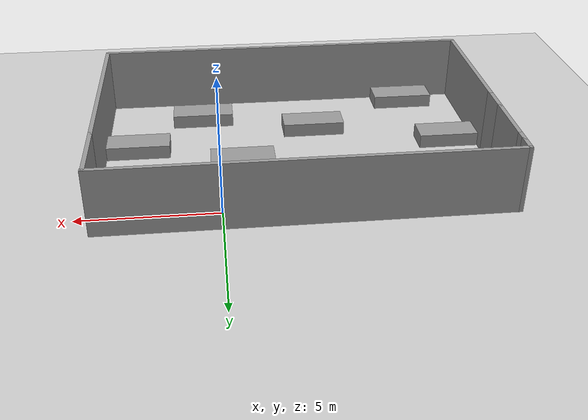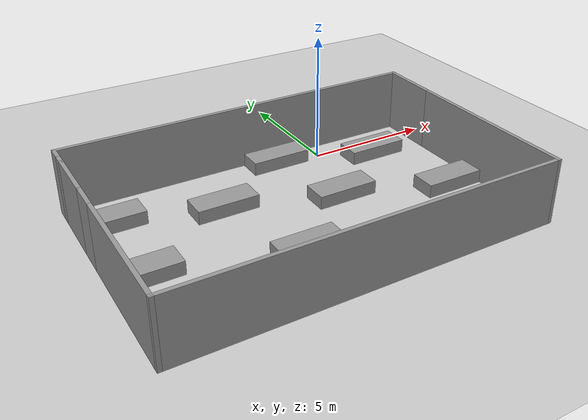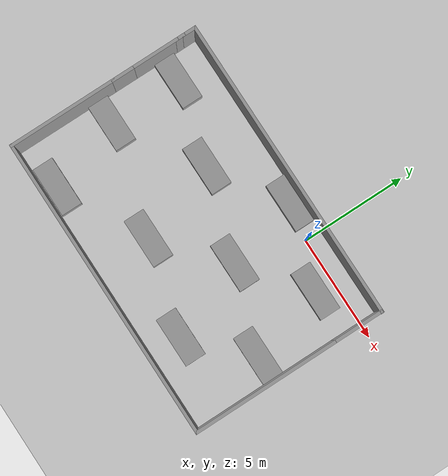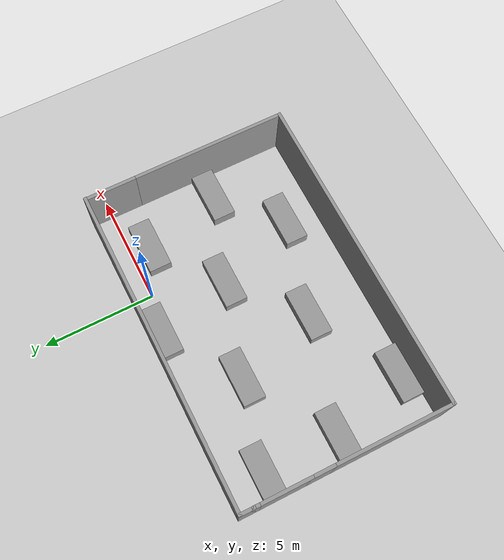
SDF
<sdf version="1.7">
 <world name="default">
  <model name="ground_plane">
   <static>1</static>
   <link name="link">
    <collision name="collision">
     <geometry><plane><normal>0 0 1</normal><size>100 100</size></plane></geometry>
     <surface><friction><ode><mu>100</mu><mu2>50</mu2></ode></friction></surface>
    </collision>
    <visual name="visual">
     <cast_shadows>0</cast_shadows>
     <geometry><plane><normal>0 0 1</normal><size>100 100</size></plane></geometry>
     <material>
      <script><uri>file://media/materials/scripts/gazebo.material</uri><name>Gazebo/Grey</name></script>
     </material>
    </visual>
   </link>
  </model>
  <model name="half_square">
   <pose>-2.87363 -3.76482 0 0 -0 0</pose>
   <link name="Wall_0">
    <collision name="Wall_0_Collision">
     <geometry><box><size>14.5 0.15 2.5</size></box></geometry>
     <pose>0 0 1.25 0 -0 0</pose>
    </collision>
    <visual name="Wall_0_Visual">
     <pose>0 0 1.25 0 -0 0</pose>
     <geometry><box><size>14.5 0.15 2.5</size></box></geometry>
     <material>
      <script><uri>file://media/materials/scripts/gazebo.material</uri><name>Gazebo/Grey</name></script>
      <ambient>1 1 1 1</ambient>
     </material>
     <meta><layer>0</layer></meta>
    </visual>
    <pose>-0.010056 -4.61503 0 0 -0 0</pose>
   </link>
   <link name="Wall_11">
    <collision name="Wall_11_Collision">
     <geometry><box><size>2.5 0.15 2.5</size></box></geometry>
     <pose>0 0 1.25 0 -0 0</pose>
    </collision>
    <visual name="Wall_11_Visual">
     <pose>0 0 1.25 0 -0 0</pose>
     <geometry><box><size>2.5 0.15 2.5</size></box></geometry>
     <material>
      <script><uri>file://media/materials/scripts/gazebo.material</uri><name>Gazebo/Grey</name></script>
      <ambient>1 1 1 1</ambient>
     </material>
     <meta><layer>0</layer></meta>
    </visual>
    <pose>7.16494 3.40997 0 0 -0 1.5708</pose>
   </link>
   <link name="Wall_13">
    <collision name="Wall_13_Collision">
     <geometry><box><size>0.730235 0.15 2.5</size></box></geometry>
     <pose>0 0 1.25 0 -0 0</pose>
    </collision>
    <visual name="Wall_13_Visual">
     <pose>0 0 1.25 0 -0 0</pose>
     <geometry><box><size>0.730235 0.15 2.5</size></box></geometry>
     <material>
      <script><uri>file://media/materials/scripts/gazebo.material</uri><name>Gazebo/Grey</name></script>
      <ambient>1 1 1 1</ambient>
     </material>
     <meta><layer>0</layer></meta>
    </visual>
    <pose>-7.18506 4.32491 0 0 -0 1.5708</pose>
   </link>
   <link name="Wall_14">
    <collision name="Wall_14_Collision">
     <geometry><box><size>14.5 0.15 2.5</size></box></geometry>
     <pose>0 0 1.25 0 -0 0</pose>
    </collision>
    <visual name="Wall_14_Visual">
     <pose>0 0 1.25 0 -0 0</pose>
     <geometry><box><size>14.5 0.15 2.5</size></box></geometry>
     <material>
      <script><uri>file://media/materials/scripts/gazebo.material</uri><name>Gazebo/Grey</name></script>
      <ambient>1 1 1 1</ambient>
     </material>
     <meta><layer>0</layer></meta>
    </visual>
    <pose>0.010057 4.61486 0 0 -0 0</pose>
   </link>
   <link name="Wall_2">
    <collision name="Wall_2_Collision">
     <geometry><box><size>5.25 0.15 2.5</size></box></geometry>
     <pose>0 0 1.25 0 -0 0</pose>
    </collision>
    <visual name="Wall_2_Visual">
     <pose>0 0 1.25 0 -0 0</pose>
     <geometry><box><size>5.25 0.15 2.5</size></box></geometry>
     <material>
      <script><uri>file://media/materials/scripts/gazebo.material</uri><name>Gazebo/Grey</name></script>
      <ambient>1 1 1 1</ambient>
     </material>
     <meta><layer>0</layer></meta>
    </visual>
    <pose>-7.18506 -2.06503 0 0 -0 1.5708</pose>
   </link>
   <link name="Wall_4">
    <collision name="Wall_4_Collision">
     <geometry><box><size>7 0.15 2.5</size></box></geometry>
     <pose>0 0 1.25 0 -0 0</pose>
    </collision>
    <visual name="Wall_4_Visual">
     <pose>0 0 1.25 0 -0 0</pose>
     <geometry><box><size>7 0.15 2.5</size></box></geometry>
     <material>
      <script><uri>file://media/materials/scripts/gazebo.material</uri><name>Gazebo/Grey</name></script>
      <ambient>1 1 1 1</ambient>
     </material>
     <meta><layer>0</layer></meta>
    </visual>
    <pose>7.16494 -1.19003 0 0 -0 1.5708</pose>
   </link>
   <link name="Wall_6">
    <collision name="Wall_6_Collision">
     <geometry><box><size>1.25 0.15 2.5</size></box></geometry>
     <pose>0 0 1.25 0 -0 0</pose>
    </collision>
    <visual name="Wall_6_Visual">
     <pose>0 0 1.25 0 -0 0</pose>
     <geometry><box><size>1.25 0.15 2.5</size></box></geometry>
     <material>
      <script><uri>file://media/materials/scripts/gazebo.material</uri><name>Gazebo/Grey</name></script>
      <ambient>1 1 1 1</ambient>
     </material>
     <meta><layer>0</layer></meta>
    </visual>
    <pose>-7.18506 1.03497 0 0 -0 1.5708</pose>
   </link>
   <link name="Wall_8">
    <collision name="Wall_8_Collision">
     <geometry><box><size>2.25 0.15 2.5</size></box></geometry>
     <pose>0 0 1.25 0 -0 0</pose>
    </collision>
    <visual name="Wall_8_Visual">
     <pose>0 0 1.25 0 -0 0</pose>
     <geometry><box><size>2.25 0.15 2.5</size></box></geometry>
     <material>
      <script><uri>file://media/materials/scripts/gazebo.material</uri><name>Gazebo/Grey</name></script>
      <ambient>1 1 1 1</ambient>
     </material>
     <meta><layer>0</layer></meta>
    </visual>
    <pose>-7.18506 2.63497 0 0 -0 1.5708</pose>
   </link>
   <link name="Wall_9">
    <collision name="Wall_9_Collision">
     <geometry><box><size>0.5 0.15 2.5</size></box></geometry>
     <pose>0 0 1.25 0 -0 0</pose>
    </collision>
    <visual name="Wall_9_Visual">
     <pose>0 0 1.25 0 -0 0</pose>
     <geometry><box><size>0.5 0.15 2.5</size></box></geometry>
     <material>
      <script><uri>file://media/materials/scripts/gazebo.material</uri><name>Gazebo/Grey</name></script>
      <ambient>1 1 1 1</ambient>
     </material>
     <meta><layer>0</layer></meta>
    </visual>
    <pose>-7.18506 3.85997 0 0 -0 1.5708</pose>
   </link>
   <static>1</static>
  </model>
  <model name="blocks">
   <link name="link_0">
    <inertial>
     <mass>2.36943</mass>
     <inertia><ixx>0.394906</ixx><ixy>0</ixy><ixz>0</ixz><iyy>1.30599</iyy><iyz>0</iyz><izz>1.30599</izz></inertia>
    </inertial>
    <pose>-5.75384 2.69431 0.000962 0 -0 0</pose>
    <visual name="visual">
     <geometry><box><size>2.36943 1 1</size></box></geometry>
     <material>
      <lighting>1</lighting>
      <script><uri>file://media/materials/scripts/gazebo.material</uri><name>Gazebo/Grey</name></script>
      <shader type="pixel"/>
     </material>
    </visual>
    <collision name="collision">
     <geometry><box><size>2.36943 1 1</size></box></geometry>
     <surface>
      <friction>
       <ode><mu>1</mu><mu2>1</mu2><fdir1>0 0 0</fdir1><slip1>0</slip1><slip2>0</slip2></ode>
       <torsional>
        <coefficient>1</coefficient>
        <patch_radius>0</patch_radius>
        <surface_radius>0</surface_radius>
        <use_patch_radius>1</use_patch_radius>
        <ode><slip>0</slip></ode>
       </torsional>
      </friction>
      <bounce><restitution_coefficient>0</restitution_coefficient><threshold>1e+06</threshold></bounce>
      <contact>
       <collide_without_contact>0</collide_without_contact>
       <collide_without_contact_bitmask>1</collide_without_contact_bitmask>
       <collide_bitmask>1</collide_bitmask>
       <ode>
        <soft_cfm>0</soft_cfm>
        <soft_erp>0.2</soft_erp>
        <kp>1e+13</kp>
        <kd>1</kd>
        <max_vel>0.01</max_vel>
        <min_depth>0</min_depth>
       </ode>
       <bullet>
        <split_impulse>1</split_impulse>
        <split_impulse_penetration_threshold>-0.01</split_impulse_penetration_threshold>
        <soft_cfm>0</soft_cfm>
        <soft_erp>0.2</soft_erp>
        <kp>1e+13</kp>
        <kd>1</kd>
       </bullet>
      </contact>
     </surface>
    </collision>
   </link>
   <link name="link_0_clone">
    <inertial>
     <mass>2.36943</mass>
     <inertia><ixx>0.394906</ixx><ixy>0</ixy><ixz>0</ixz><iyy>1.30599</iyy><iyz>0</iyz><izz>1.30599</izz></inertia>
    </inertial>
    <pose>-5.77767 -0.741476 0.000962 0 -0 0</pose>
    <visual name="visual">
     <geometry><box><size>2.36943 1 1</size></box></geometry>
     <material>
      <lighting>1</lighting>
      <script><uri>file://media/materials/scripts/gazebo.material</uri><name>Gazebo/Grey</name></script>
      <shader type="pixel"/>
     </material>
    </visual>
    <collision name="collision">
     <geometry><box><size>2.36943 1 1</size></box></geometry>
     <surface>
      <friction>
       <ode><mu>1</mu><mu2>1</mu2><fdir1>0 0 0</fdir1><slip1>0</slip1><slip2>0</slip2></ode>
       <torsional>
        <coefficient>1</coefficient>
        <patch_radius>0</patch_radius>
        <surface_radius>0</surface_radius>
        <use_patch_radius>1</use_patch_radius>
        <ode><slip>0</slip></ode>
       </torsional>
      </friction>
      <bounce><restitution_coefficient>0</restitution_coefficient><threshold>1e+06</threshold></bounce>
      <contact>
       <collide_without_contact>0</collide_without_contact>
       <collide_without_contact_bitmask>1</collide_without_contact_bitmask>
       <collide_bitmask>1</collide_bitmask>
       <ode>
        <soft_cfm>0</soft_cfm>
        <soft_erp>0.2</soft_erp>
        <kp>1e+13</kp>
        <kd>1</kd>
        <max_vel>0.01</max_vel>
        <min_depth>0</min_depth>
       </ode>
       <bullet>
        <split_impulse>1</split_impulse>
        <split_impulse_penetration_threshold>-0.01</split_impulse_penetration_threshold>
        <soft_cfm>0</soft_cfm>
        <soft_erp>0.2</soft_erp>
        <kp>1e+13</kp>
        <kd>1</kd>
       </bullet>
      </contact>
     </surface>
    </collision>
   </link>
   <link name="link_0_clone_0">
    <inertial>
     <mass>2.36943</mass>
     <inertia><ixx>0.394906</ixx><ixy>0</ixy><ixz>0</ixz><iyy>1.30599</iyy><iyz>0</iyz><izz>1.30599</izz></inertia>
    </inertial>
    <pose>-1.90552 1.69787 0.000962 0 -0 0</pose>
    <visual name="visual">
     <geometry><box><size>2.36943 1 1</size></box></geometry>
     <material>
      <lighting>1</lighting>
      <script><uri>file://media/materials/scripts/gazebo.material</uri><name>Gazebo/Grey</name></script>
      <shader type="pixel"/>
     </material>
    </visual>
    <collision name="collision">
     <geometry><box><size>2.36943 1 1</size></box></geometry>
     <surface>
      <friction>
       <ode><mu>1</mu><mu2>1</mu2><fdir1>0 0 0</fdir1><slip1>0</slip1><slip2>0</slip2></ode>
       <torsional>
        <coefficient>1</coefficient>
        <patch_radius>0</patch_radius>
        <surface_radius>0</surface_radius>
        <use_patch_radius>1</use_patch_radius>
        <ode><slip>0</slip></ode>
       </torsional>
      </friction>
      <bounce><restitution_coefficient>0</restitution_coefficient><threshold>1e+06</threshold></bounce>
      <contact>
       <collide_without_contact>0</collide_without_contact>
       <collide_without_contact_bitmask>1</collide_without_contact_bitmask>
       <collide_bitmask>1</collide_bitmask>
       <ode>
        <soft_cfm>0</soft_cfm>
        <soft_erp>0.2</soft_erp>
        <kp>1e+13</kp>
        <kd>1</kd>
        <max_vel>0.01</max_vel>
        <min_depth>0</min_depth>
       </ode>
       <bullet>
        <split_impulse>1</split_impulse>
        <split_impulse_penetration_threshold>-0.01</split_impulse_penetration_threshold>
        <soft_cfm>0</soft_cfm>
        <soft_erp>0.2</soft_erp>
        <kp>1e+13</kp>
        <kd>1</kd>
       </bullet>
      </contact>
     </surface>
    </collision>
   </link>
   <link name="link_0_clone_1">
    <inertial>
     <mass>2.36943</mass>
     <inertia><ixx>0.394906</ixx><ixy>0</ixy><ixz>0</ixz><iyy>1.30599</iyy><iyz>0</iyz><izz>1.30599</izz></inertia>
    </inertial>
    <pose>1.4206 3.85936 0.000962 0 -0 0</pose>
    <visual name="visual">
     <geometry><box><size>2.36943 1 1</size></box></geometry>
     <material>
      <lighting>1</lighting>
      <script><uri>file://media/materials/scripts/gazebo.material</uri><name>Gazebo/Grey</name></script>
      <shader type="pixel"/>
     </material>
    </visual>
    <collision name="collision">
     <geometry><box><size>2.36943 1 1</size></box></geometry>
     <surface>
      <friction>
       <ode><mu>1</mu><mu2>1</mu2><fdir1>0 0 0</fdir1><slip1>0</slip1><slip2>0</slip2></ode>
       <torsional>
        <coefficient>1</coefficient>
        <patch_radius>0</patch_radius>
        <surface_radius>0</surface_radius>
        <use_patch_radius>1</use_patch_radius>
        <ode><slip>0</slip></ode>
       </torsional>
      </friction>
      <bounce><restitution_coefficient>0</restitution_coefficient><threshold>1e+06</threshold></bounce>
      <contact>
       <collide_without_contact>0</collide_without_contact>
       <collide_without_contact_bitmask>1</collide_without_contact_bitmask>
       <collide_bitmask>1</collide_bitmask>
       <ode>
        <soft_cfm>0</soft_cfm>
        <soft_erp>0.2</soft_erp>
        <kp>1e+13</kp>
        <kd>1</kd>
        <max_vel>0.01</max_vel>
        <min_depth>0</min_depth>
       </ode>
       <bullet>
        <split_impulse>1</split_impulse>
        <split_impulse_penetration_threshold>-0.01</split_impulse_penetration_threshold>
        <soft_cfm>0</soft_cfm>
        <soft_erp>0.2</soft_erp>
        <kp>1e+13</kp>
        <kd>1</kd>
       </bullet>
      </contact>
     </surface>
    </collision>
   </link>
   <link name="link_0_clone_2">
    <inertial>
     <mass>2.36943</mass>
     <inertia><ixx>0.394906</ixx><ixy>0</ixy><ixz>0</ixz><iyy>1.30599</iyy><iyz>0</iyz><izz>1.30599</izz></inertia>
    </inertial>
    <pose>2.28197 0.418667 -0.008656 0 -0 0</pose>
    <visual name="visual">
     <geometry><box><size>2.36943 1 1</size></box></geometry>
     <material>
      <lighting>1</lighting>
      <script><uri>file://media/materials/scripts/gazebo.material</uri><name>Gazebo/Grey</name></script>
      <shader type="pixel"/>
     </material>
    </visual>
    <collision name="collision">
     <geometry><box><size>2.36943 1 1</size></box></geometry>
     <surface>
      <friction>
       <ode><mu>1</mu><mu2>1</mu2><fdir1>0 0 0</fdir1><slip1>0</slip1><slip2>0</slip2></ode>
       <torsional>
        <coefficient>1</coefficient>
        <patch_radius>0</patch_radius>
        <surface_radius>0</surface_radius>
        <use_patch_radius>1</use_patch_radius>
        <ode><slip>0</slip></ode>
       </torsional>
      </friction>
      <bounce><restitution_coefficient>0</restitution_coefficient><threshold>1e+06</threshold></bounce>
      <contact>
       <collide_without_contact>0</collide_without_contact>
       <collide_without_contact_bitmask>1</collide_without_contact_bitmask>
       <collide_bitmask>1</collide_bitmask>
       <ode>
        <soft_cfm>0</soft_cfm>
        <soft_erp>0.2</soft_erp>
        <kp>1e+13</kp>
        <kd>1</kd>
        <max_vel>0.01</max_vel>
        <min_depth>0</min_depth>
       </ode>
       <bullet>
        <split_impulse>1</split_impulse>
        <split_impulse_penetration_threshold>-0.01</split_impulse_penetration_threshold>
        <soft_cfm>0</soft_cfm>
        <soft_erp>0.2</soft_erp>
        <kp>1e+13</kp>
        <kd>1</kd>
       </bullet>
      </contact>
     </surface>
    </collision>
   </link>
   <link name="link_0_clone_3">
    <inertial>
     <mass>2.36943</mass>
     <inertia><ixx>0.394906</ixx><ixy>0</ixy><ixz>0</ixz><iyy>1.30599</iyy><iyz>0</iyz><izz>1.30599</izz></inertia>
    </inertial>
    <pose>-4.68407 -4.22973 0.000962 0 -0 0</pose>
    <visual name="visual">
     <geometry><box><size>2.36943 1 1</size></box></geometry>
     <material>
      <lighting>1</lighting>
      <script><uri>file://media/materials/scripts/gazebo.material</uri><name>Gazebo/Grey</name></script>
      <shader type="pixel"/>
     </material>
    </visual>
    <collision name="collision">
     <geometry><box><size>2.36943 1 1</size></box></geometry>
     <surface>
      <friction>
       <ode><mu>1</mu><mu2>1</mu2><fdir1>0 0 0</fdir1><slip1>0</slip1><slip2>0</slip2></ode>
       <torsional>
        <coefficient>1</coefficient>
        <patch_radius>0</patch_radius>
        <surface_radius>0</surface_radius>
        <use_patch_radius>1</use_patch_radius>
        <ode><slip>0</slip></ode>
       </torsional>
      </friction>
      <bounce><restitution_coefficient>0</restitution_coefficient><threshold>1e+06</threshold></bounce>
      <contact>
       <collide_without_contact>0</collide_without_contact>
       <collide_without_contact_bitmask>1</collide_without_contact_bitmask>
       <collide_bitmask>1</collide_bitmask>
       <ode>
        <soft_cfm>0</soft_cfm>
        <soft_erp>0.2</soft_erp>
        <kp>1e+13</kp>
        <kd>1</kd>
        <max_vel>0.01</max_vel>
        <min_depth>0</min_depth>
       </ode>
       <bullet>
        <split_impulse>1</split_impulse>
        <split_impulse_penetration_threshold>-0.01</split_impulse_penetration_threshold>
        <soft_cfm>0</soft_cfm>
        <soft_erp>0.2</soft_erp>
        <kp>1e+13</kp>
        <kd>1</kd>
       </bullet>
      </contact>
     </surface>
    </collision>
   </link>
   <link name="link_0_clone_4">
    <inertial>
     <mass>2.36943</mass>
     <inertia><ixx>0.394906</ixx><ixy>0</ixy><ixz>0</ixz><iyy>1.30599</iyy><iyz>0</iyz><izz>1.30599</izz></inertia>
    </inertial>
    <pose>-0.648381 -2.13138 0.000962 0 -0 0</pose>
    <visual name="visual">
     <geometry><box><size>2.36943 1 1</size></box></geometry>
     <material>
      <lighting>1</lighting>
      <script><uri>file://media/materials/scripts/gazebo.material</uri><name>Gazebo/Grey</name></script>
      <shader type="pixel"/>
     </material>
    </visual>
    <collision name="collision">
     <geometry><box><size>2.36943 1 1</size></box></geometry>
     <surface>
      <friction>
       <ode><mu>1</mu><mu2>1</mu2><fdir1>0 0 0</fdir1><slip1>0</slip1><slip2>0</slip2></ode>
       <torsional>
        <coefficient>1</coefficient>
        <patch_radius>0</patch_radius>
        <surface_radius>0</surface_radius>
        <use_patch_radius>1</use_patch_radius>
        <ode><slip>0</slip></ode>
       </torsional>
      </friction>
      <bounce><restitution_coefficient>0</restitution_coefficient><threshold>1e+06</threshold></bounce>
      <contact>
       <collide_without_contact>0</collide_without_contact>
       <collide_without_contact_bitmask>1</collide_without_contact_bitmask>
       <collide_bitmask>1</collide_bitmask>
       <ode>
        <soft_cfm>0</soft_cfm>
        <soft_erp>0.2</soft_erp>
        <kp>1e+13</kp>
        <kd>1</kd>
        <max_vel>0.01</max_vel>
        <min_depth>0</min_depth>
       </ode>
       <bullet>
        <split_impulse>1</split_impulse>
        <split_impulse_penetration_threshold>-0.01</split_impulse_penetration_threshold>
        <soft_cfm>0</soft_cfm>
        <soft_erp>0.2</soft_erp>
        <kp>1e+13</kp>
        <kd>1</kd>
       </bullet>
      </contact>
     </surface>
    </collision>
   </link>
   <link name="link_0_clone_5">
    <inertial>
     <mass>2.36943</mass>
     <inertia><ixx>0.394906</ixx><ixy>0</ixy><ixz>0</ixz><iyy>1.30599</iyy><iyz>0</iyz><izz>1.30599</izz></inertia>
    </inertial>
    <pose>3.69238 -3.28591 0.000962 0 -0 0</pose>
    <visual name="visual">
     <geometry><box><size>2.36943 1 1</size></box></geometry>
     <material>
      <lighting>1</lighting>
      <script><uri>file://media/materials/scripts/gazebo.material</uri><name>Gazebo/Grey</name></script>
      <shader type="pixel"/>
     </material>
    </visual>
    <collision name="collision">
     <geometry><box><size>2.36943 1 1</size></box></geometry>
     <surface>
      <friction>
       <ode><mu>1</mu><mu2>1</mu2><fdir1>0 0 0</fdir1><slip1>0</slip1><slip2>0</slip2></ode>
       <torsional>
        <coefficient>1</coefficient>
        <patch_radius>0</patch_radius>
        <surface_radius>0</surface_radius>
        <use_patch_radius>1</use_patch_radius>
        <ode><slip>0</slip></ode>
       </torsional>
      </friction>
      <bounce><restitution_coefficient>0</restitution_coefficient><threshold>1e+06</threshold></bounce>
      <contact>
       <collide_without_contact>0</collide_without_contact>
       <collide_without_contact_bitmask>1</collide_without_contact_bitmask>
       <collide_bitmask>1</collide_bitmask>
       <ode>
        <soft_cfm>0</soft_cfm>
        <soft_erp>0.2</soft_erp>
        <kp>1e+13</kp>
        <kd>1</kd>
        <max_vel>0.01</max_vel>
        <min_depth>0</min_depth>
       </ode>
       <bullet>
        <split_impulse>1</split_impulse>
        <split_impulse_penetration_threshold>-0.01</split_impulse_penetration_threshold>
        <soft_cfm>0</soft_cfm>
        <soft_erp>0.2</soft_erp>
        <kp>1e+13</kp>
        <kd>1</kd>
       </bullet>
      </contact>
     </surface>
    </collision>
   </link>
   <link name="link_0_clone_6">
    <inertial>
     <mass>2.36943</mass>
     <inertia><ixx>0.394906</ixx><ixy>0</ixy><ixz>0</ixz><iyy>1.30599</iyy><iyz>0</iyz><izz>1.30599</izz></inertia>
    </inertial>
    <pose>6.16494 -0.935906 0.000962 0 -0 0</pose>
    <visual name="visual">
     <geometry><box><size>2.36943 1 1</size></box></geometry>
     <material>
      <lighting>1</lighting>
      <script><uri>file://media/materials/scripts/gazebo.material</uri><name>Gazebo/Grey</name></script>
      <shader type="pixel"/>
     </material>
    </visual>
    <collision name="collision">
     <geometry><box><size>2.36943 1 1</size></box></geometry>
     <surface>
      <friction>
       <ode><mu>1</mu><mu2>1</mu2><fdir1>0 0 0</fdir1><slip1>0</slip1><slip2>0</slip2></ode>
       <torsional>
        <coefficient>1</coefficient>
        <patch_radius>0</patch_radius>
        <surface_radius>0</surface_radius>
        <use_patch_radius>1</use_patch_radius>
        <ode><slip>0</slip></ode>
       </torsional>
      </friction>
      <bounce><restitution_coefficient>0</restitution_coefficient><threshold>1e+06</threshold></bounce>
      <contact>
       <collide_without_contact>0</collide_without_contact>
       <collide_without_contact_bitmask>1</collide_without_contact_bitmask>
       <collide_bitmask>1</collide_bitmask>
       <ode>
        <soft_cfm>0</soft_cfm>
        <soft_erp>0.2</soft_erp>
        <kp>1e+13</kp>
        <kd>1</kd>
        <max_vel>0.01</max_vel>
        <min_depth>0</min_depth>
       </ode>
       <bullet>
        <split_impulse>1</split_impulse>
        <split_impulse_penetration_threshold>-0.01</split_impulse_penetration_threshold>
        <soft_cfm>0</soft_cfm>
        <soft_erp>0.2</soft_erp>
        <kp>1e+13</kp>
        <kd>1</kd>
       </bullet>
      </contact>
     </surface>
    </collision>
   </link>
   <link name="link_0_clone_7">
    <inertial>
     <mass>2.36943</mass>
     <inertia><ixx>0.394906</ixx><ixy>0</ixy><ixz>0</ixz><iyy>1.30599</iyy><iyz>0</iyz><izz>1.30599</izz></inertia>
    </inertial>
    <pose>5.20961 2.65419 0.000962 0 -0 0</pose>
    <visual name="visual">
     <geometry><box><size>2.36943 1 1</size></box></geometry>
     <material>
      <lighting>1</lighting>
      <script><uri>file://media/materials/scripts/gazebo.material</uri><name>Gazebo/Grey</name></script>
      <shader type="pixel"/>
     </material>
    </visual>
    <collision name="collision">
     <geometry><box><size>2.36943 1 1</size></box></geometry>
     <surface>
      <friction>
       <ode><mu>1</mu><mu2>1</mu2><fdir1>0 0 0</fdir1><slip1>0</slip1><slip2>0</slip2></ode>
       <torsional>
        <coefficient>1</coefficient>
        <patch_radius>0</patch_radius>
        <surface_radius>0</surface_radius>
        <use_patch_radius>1</use_patch_radius>
        <ode><slip>0</slip></ode>
       </torsional>
      </friction>
      <bounce><restitution_coefficient>0</restitution_coefficient><threshold>1e+06</threshold></bounce>
      <contact>
       <collide_without_contact>0</collide_without_contact>
       <collide_without_contact_bitmask>1</collide_without_contact_bitmask>
       <collide_bitmask>1</collide_bitmask>
       <ode>
        <soft_cfm>0</soft_cfm>
        <soft_erp>0.2</soft_erp>
        <kp>1e+13</kp>
        <kd>1</kd>
        <max_vel>0.01</max_vel>
        <min_depth>0</min_depth>
       </ode>
       <bullet>
        <split_impulse>1</split_impulse>
        <split_impulse_penetration_threshold>-0.01</split_impulse_penetration_threshold>
        <soft_cfm>0</soft_cfm>
        <soft_erp>0.2</soft_erp>
        <kp>1e+13</kp>
        <kd>1</kd>
       </bullet>
      </contact>
     </surface>
    </collision>
   </link>
   <static>1</static>
   <pose>-3.14353 -3.52556 0 0 -0 0</pose>
  </model>
 </world>
</sdf>
